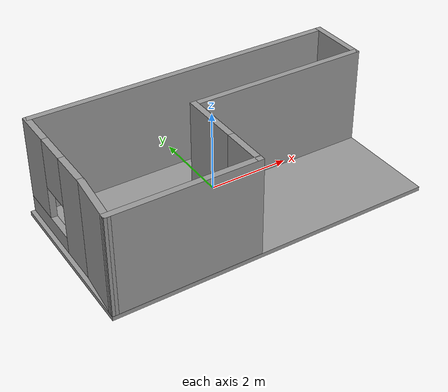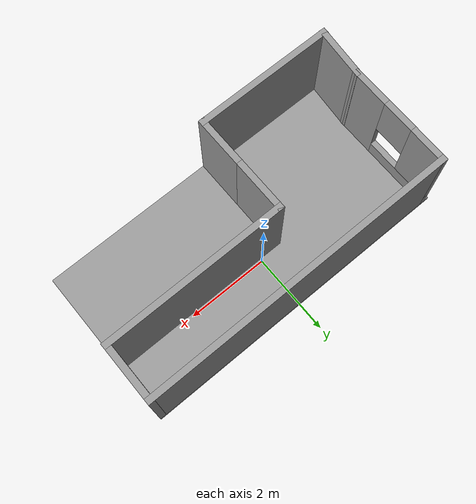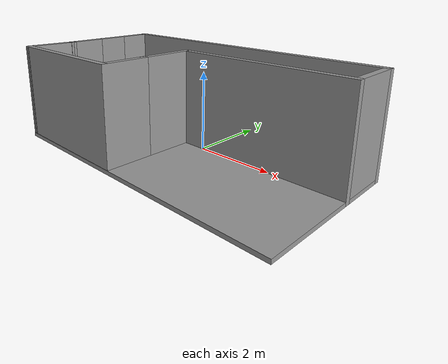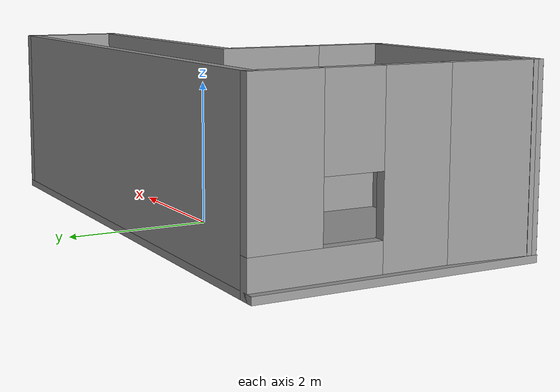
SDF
<?xml version='1.0'?>
<sdf version='1.6'>
  <model name='Untitled'>
    <model name='New_House'>
      <pose frame=''>0 3.5e-05 0 0 -0 0</pose>
      <link name='Floor_6'>
        <collision name='Floor_6_Collision'>
          <geometry>
            <box>
              <size>7.85597 3.95597 0.1</size>
            </box>
          </geometry>
          <pose frame=''>0 0 0.05 0 -0 0</pose>
        </collision>
        <visual name='Floor_6_Visual'>
          <pose frame=''>0 0 0.05 0 -0 0</pose>
          <geometry>
            <box>
              <size>7.85597 3.95597 0.1</size>
            </box>
          </geometry>
          <material>
            <script>
              <uri>file://media/materials/scripts/gazebo.material</uri>
              <name>Gazebo/Grey</name>
            </script>
            <ambient>1 1 1 1</ambient>
          </material>
          <meta>
            <layer>0</layer>
          </meta>
        </visual>
        <pose frame=''>-0 -0.6675 0 0 -0 0</pose>
      </link>
      <link name='Wall_57'>
        <pose frame=''>-3.74702 -0.064515 0 0 -0 1.5708</pose>
        <visual name='Wall_57_Visual_0'>
          <pose frame=''>-0.8775 0 1.25 0 -0 0</pose>
          <geometry>
            <box>
              <size>0.995 0.15 2.5</size>
            </box>
          </geometry>
          <material>
            <script>
              <uri>file://media/materials/scripts/gazebo.material</uri>
              <name>Gazebo/Grey</name>
            </script>
            <ambient>1 1 1 1</ambient>
          </material>
          <meta>
            <layer>0</layer>
          </meta>
        </visual>
        <collision name='Wall_57_Collision_0'>
          <geometry>
            <box>
              <size>0.995 0.15 2.5</size>
            </box>
          </geometry>
          <pose frame=''>-0.8775 0 1.25 0 -0 0</pose>
        </collision>
        <visual name='Wall_57_Visual_1'>
          <pose frame=''>0.4975 0 0.25 0 -0 0</pose>
          <geometry>
            <box>
              <size>1.755 0.15 0.5</size>
            </box>
          </geometry>
          <material>
            <script>
              <uri>file://media/materials/scripts/gazebo.material</uri>
              <name>Gazebo/Grey</name>
            </script>
            <ambient>1 1 1 1</ambient>
          </material>
          <meta>
            <layer>0</layer>
          </meta>
        </visual>
        <collision name='Wall_57_Collision_1'>
          <geometry>
            <box>
              <size>1.755 0.15 0.5</size>
            </box>
          </geometry>
          <pose frame=''>0.4975 0 0.25 0 -0 0</pose>
        </collision>
        <visual name='Wall_57_Visual_2'>
          <pose frame=''>0.8975 0 1.5 0 -0 0</pose>
          <geometry>
            <box>
              <size>0.955 0.15 2</size>
            </box>
          </geometry>
          <material>
            <script>
              <uri>file://media/materials/scripts/gazebo.material</uri>
              <name>Gazebo/Grey</name>
            </script>
            <ambient>1 1 1 1</ambient>
          </material>
          <meta>
            <layer>0</layer>
          </meta>
        </visual>
        <collision name='Wall_57_Collision_2'>
          <geometry>
            <box>
              <size>0.955 0.15 2</size>
            </box>
          </geometry>
          <pose frame=''>0.8975 0 1.5 0 -0 0</pose>
        </collision>
        <visual name='Wall_57_Visual_3'>
          <pose frame=''>0.02 0 1.9 0 -0 0</pose>
          <geometry>
            <box>
              <size>0.8 0.15 1.2</size>
            </box>
          </geometry>
          <material>
            <script>
              <uri>file://media/materials/scripts/gazebo.material</uri>
              <name>Gazebo/Grey</name>
            </script>
            <ambient>1 1 1 1</ambient>
          </material>
          <meta>
            <layer>0</layer>
          </meta>
        </visual>
        <collision name='Wall_57_Collision_3'>
          <geometry>
            <box>
              <size>0.8 0.15 1.2</size>
            </box>
          </geometry>
          <pose frame=''>0.02 0 1.9 0 -0 0</pose>
        </collision>
      </link>
      <link name='Wall_58'>
        <collision name='Wall_58_Collision'>
          <geometry>
            <box>
              <size>7.75 0.15 2.5</size>
            </box>
          </geometry>
          <pose frame=''>0 0 1.25 0 -0 0</pose>
        </collision>
        <visual name='Wall_58_Visual'>
          <pose frame=''>0 0 1.25 0 -0 0</pose>
          <geometry>
            <box>
              <size>7.75 0.15 2.5</size>
            </box>
          </geometry>
          <material>
            <script>
              <uri>file://media/materials/scripts/gazebo.material</uri>
              <name>Gazebo/Grey</name>
            </script>
            <ambient>1 1 1 1</ambient>
          </material>
          <meta>
            <layer>0</layer>
          </meta>
        </visual>
        <pose frame=''>0.052985 1.23548 0 0 -0 0</pose>
      </link>
      <link name='Wall_59'>
        <collision name='Wall_59_Collision'>
          <geometry>
            <box>
              <size>1.5 0.15 2.5</size>
            </box>
          </geometry>
          <pose frame=''>0 0 1.25 0 -0 0</pose>
        </collision>
        <visual name='Wall_59_Visual'>
          <pose frame=''>0 0 1.25 0 -0 0</pose>
          <geometry>
            <box>
              <size>1.5 0.15 2.5</size>
            </box>
          </geometry>
          <material>
            <script>
              <uri>file://media/materials/scripts/gazebo.material</uri>
              <name>Gazebo/Grey</name>
            </script>
            <ambient>1 1 1 1</ambient>
          </material>
          <meta>
            <layer>0</layer>
          </meta>
        </visual>
        <pose frame=''>3.85298 0.560485 0 0 -0 -1.5708</pose>
      </link>
      <link name='Wall_60'>
        <collision name='Wall_60_Collision'>
          <geometry>
            <box>
              <size>4.5 0.15 2.5</size>
            </box>
          </geometry>
          <pose frame=''>0 0 1.25 0 -0 0</pose>
        </collision>
        <visual name='Wall_60_Visual'>
          <pose frame=''>0 0 1.25 0 -0 0</pose>
          <geometry>
            <box>
              <size>4.5 0.15 2.5</size>
            </box>
          </geometry>
          <material>
            <script>
              <uri>file://media/materials/scripts/gazebo.material</uri>
              <name>Gazebo/Grey</name>
            </script>
            <ambient>1 1 1 1</ambient>
          </material>
          <meta>
            <layer>0</layer>
          </meta>
        </visual>
        <pose frame=''>1.67799 -0.114515 0 0 -0 3.14159</pose>
      </link>
      <link name='Wall_61'>
        <collision name='Wall_61_Collision'>
          <geometry>
            <box>
              <size>1.5 0.15 2.5</size>
            </box>
          </geometry>
          <pose frame=''>0 0 1.25 0 -0 0</pose>
        </collision>
        <visual name='Wall_61_Visual'>
          <pose frame=''>0 0 1.25 0 -0 0</pose>
          <geometry>
            <box>
              <size>1.5 0.15 2.5</size>
            </box>
          </geometry>
          <material>
            <script>
              <uri>file://media/materials/scripts/gazebo.material</uri>
              <name>Gazebo/Grey</name>
            </script>
            <ambient>1 1 1 1</ambient>
          </material>
          <meta>
            <layer>0</layer>
          </meta>
        </visual>
        <pose frame=''>-0.497015 -0.789515 0 0 -0 -1.5708</pose>
      </link>
      <link name='Wall_62'>
        <collision name='Wall_62_Collision'>
          <geometry>
            <box>
              <size>1.25 0.15 2.5</size>
            </box>
          </geometry>
          <pose frame=''>0 0 1.25 0 -0 0</pose>
        </collision>
        <visual name='Wall_62_Visual'>
          <pose frame=''>0 0 1.25 0 -0 0</pose>
          <geometry>
            <box>
              <size>1.25 0.15 2.5</size>
            </box>
          </geometry>
          <material>
            <script>
              <uri>file://media/materials/scripts/gazebo.material</uri>
              <name>Gazebo/Grey</name>
            </script>
            <ambient>1 1 1 1</ambient>
          </material>
          <meta>
            <layer>0</layer>
          </meta>
        </visual>
        <pose frame=''>-0.497015 -2.01451 0 0 -0 -1.5708</pose>
      </link>
      <link name='Wall_63'>
        <collision name='Wall_63_Collision'>
          <geometry>
            <box>
              <size>3.5 0.15 2.5</size>
            </box>
          </geometry>
          <pose frame=''>0 0 1.25 0 -0 0</pose>
        </collision>
        <visual name='Wall_63_Visual'>
          <pose frame=''>0 0 1.25 0 -0 0</pose>
          <geometry>
            <box>
              <size>3.5 0.15 2.5</size>
            </box>
          </geometry>
          <material>
            <script>
              <uri>file://media/materials/scripts/gazebo.material</uri>
              <name>Gazebo/Grey</name>
            </script>
            <ambient>1 1 1 1</ambient>
          </material>
          <meta>
            <layer>0</layer>
          </meta>
        </visual>
        <pose frame=''>-2.17202 -2.56452 0 0 -0 3.14159</pose>
      </link>
      <link name='Wall_64'>
        <collision name='Wall_64_Collision'>
          <geometry>
            <box>
              <size>1.35416 0.15 2.5</size>
            </box>
          </geometry>
          <pose frame=''>0 0 1.25 0 -0 0</pose>
        </collision>
        <visual name='Wall_64_Visual'>
          <pose frame=''>0 0 1.25 0 -0 0</pose>
          <geometry>
            <box>
              <size>1.35416 0.15 2.5</size>
            </box>
          </geometry>
          <material>
            <script>
              <uri>file://media/materials/scripts/gazebo.material</uri>
              <name>Gazebo/Grey</name>
            </script>
            <ambient>1 1 1 1</ambient>
          </material>
          <meta>
            <layer>0</layer>
          </meta>
        </visual>
        <pose frame=''>-3.79702 -1.96452 0 0 -0 1.48765</pose>
      </link>
      <static>1</static>
    </model>
    <static>0</static>
    <allow_auto_disable>1</allow_auto_disable>
  </model>
</sdf>
